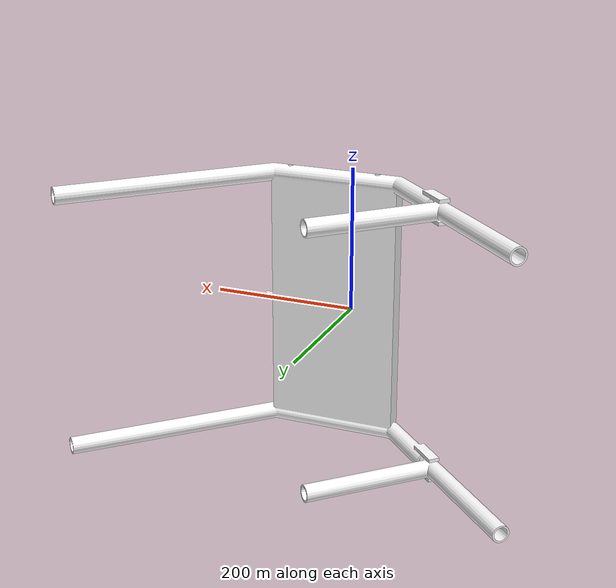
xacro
<?xml version="1.0"?>

<robot name="agribot"
    xmlns:sensor="http://playerstage.sourceforge.net/gazebo/xmlschema/#sensor"
    xmlns:controller="http://playerstage.sourceforge.net/gazebo/xmlschema/#controller"
    xmlns:interface="http://playerstage.sourceforge.net/gazebo/xmlschema/#interface"
    xmlns:xacro="http://ros.org/wiki/xacro">

    <!-- Included URDF Files -->
	<xacro:include filename="$(find agribot_description)/urdf/agribot_body.urdf.xacro" />

        <property name="ns" value="agribot" />

	<gazebo>
	  <plugin name="gazebo_ros_control" filename="libgazebo_ros_control.so">
    	  	<robotNamespace>/agribot</robotNamespace>
  	  </plugin>
	</gazebo>

	<gazebo>
  <plugin name="skid_steer_drive_controller" filename="libgazebo_ros_skid_steer_drive.so">
    <updateRate>100.0</updateRate>
    <robotNamespace>/agribot</robotNamespace>
    <commandTopic>/agribot/cmd_vel</commandTopic>
    <odometryTopic>odom</odometryTopic>
    <odometryFrame>odom</odometryFrame>
    <leftFrontJoint>base_link_to_left_wheel_F_joint</leftFrontJoint>
    <rightFrontJoint>base_link_to_right_wheel_F_joint</rightFrontJoint>
    <leftRearJoint>base_link_to_left_wheel_R_joint</leftRearJoint>
    <rightRearJoint>base_link_to_right_wheel_R_joint</rightRearJoint>
    <wheelSeparation>0.65</wheelSeparation>
    <wheelDiameter>0.2</wheelDiameter>
    <robotBaseFrame>dummy_link</robotBaseFrame>
    <torque>20</torque>
    <topicName>/agribot/cmd_vel</topicName>
    <broadcastTF>True</broadcastTF>
    <covariance_x>0.000100</covariance_x>
    <covariance_y>0.000100</covariance_y>
    <covariance_z>0.000100</covariance_z>
    <covariance_yaw>0.0100</covariance_yaw>
  </plugin>
</gazebo>>

    <!-- Set up imu configuration -->
    <gazebo>
        <plugin name="imu" filename="libhector_gazebo_ros_imu.so">
	  <serviceName>/imu/calibrate</serviceName>
	<robotNamespace>/agribot</robotNamespace>
	  <updateRate>200.0</updateRate>
	  <bodyName>imu_link</bodyName>
	  <frameId>imu_link</frameId>
	  <topicName>imu</topicName>
	  <rpyOffset>0 0 0</rpyOffset>
	  <xyzOffset>0 0 0</xyzOffset>
	  <gaussianNoise>0.00000001</gaussianNoise>
	  <accelOffset>0 0 -9.79999999586</accelOffset>
	  <accelDrift>0.00000001 0.00000001 0.00000001</accelDrift>
	  <accelDriftFrequency>0.00000001 0.00000001 0.00000001</accelDriftFrequency>
	  <accelGaussianNoise>0.00000001 0.00000001 0.00000001</accelGaussianNoise>
	  <rateDrift>0.0 0.0 0.0</rateDrift>
	  <rateDriftFrequency>0.0 0.0 0.0</rateDriftFrequency>
	  <rateGaussianNoise>0.0 0.0 0.0</rateGaussianNoise>
	  <headingDrift>0.0 0.0 0.0</headingDrift>
	  <headingDriftFrequency>0.0 0.0 0.0</headingDriftFrequency>
	  <headingGaussianNoise>0.0 0.0 0.0</headingGaussianNoise>
	</plugin>
     </gazebo>

    <!-- Set up gps configuration -->
    <gazebo>
	<plugin name="gps_controller" filename="libhector_gazebo_ros_gps.so">
	    <alwayson>true</alwayson>
	    <robotNamespace>/agribot</robotNamespace>
	    <updateRate>5.0</updateRate>
	    <bodyname>gps_link</bodyname>
	    <topicname>fix</topicname>
	    <velocitytopicname>fix_velocity</velocitytopicname>
	    <drift>5.0 5.0 5.0</drift>
	    <offset>0 0 0</offset>
	    <status> 0 </status>
	    <service> 1 </service>
            <referenceLatitude> 21.1613108102 </referenceLatitude>
	    <referenceLongitude> 72.7869817026 </referenceLongitude>
	    <gaussiannoise>0.1 0.1 0.1</gaussiannoise>
	    <velocitydrift>0 0 0</velocitydrift>
	    <velocitygaussiannoise>0.1 0.1 0.1</velocitygaussiannoise>
	</plugin>
     </gazebo>

	<gazebo>
		<plugin name="magnetometer" filename="libhector_gazebo_ros_magnetic.so">
			<updateRate>5.0</updateRate>
			<robotNamespace>/agribot</robotNamespace>
			<bodyName>base_link</bodyName>
			<topicName>/magnetic</topicName>
			<magnitude>1.0</magnitude>
			<referenceHeading>0.0</referenceHeading>
			<declination>0.0</declination>
			<offset>0 0 0</offset>
			<drift>0.1 0.1 0.1</drift>
			<driftFrequency>10 10 10</driftFrequency>
			<gaussianNoise>0.1 0.1 0.1</gaussianNoise>
		</plugin>
	</gazebo>
</robot>

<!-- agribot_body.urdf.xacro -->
<robot
    name="agribot"
    xmlns:xi="http://www.w3.org/2001/XInclude"
    xmlns:gazebo="http://playerstage.sourceforge.net/gazebo/xmlschema/#gz"
    xmlns:model="http://playerstage.sourceforge.net/gazebo/xmlschema/#model"
    xmlns:sensor="http://playerstage.sourceforge.net/gazebo/xmlschema/#sensor"
    xmlns:body="http://playerstage.sourceforge.net/gazebo/xmlschema/#body"
    xmlns:geom="http://playerstage.sourceforge.net/gazebo/xmlschema/#geom"
    xmlns:joint="http://playerstage.sourceforge.net/gazebo/xmlschema/#joint"
    xmlns:controller="http://playerstage.sourceforge.net/gazebo/xmlschema/#controller"
    xmlns:interface="http://playerstage.sourceforge.net/gazebo/xmlschema/#interface"
    xmlns:rendering="http://playerstage.sourceforge.net/gazebo/xmlschema/#rendering"
    xmlns:renderable="http://playerstage.sourceforge.net/gazebo/xmlschema/#renderable"
    xmlns:physics="http://playerstage.sourceforge.net/gazebo/xmlschema/#physics"
    xmlns:xacro="http://ros.org/wiki/xacro">

    <!-- Included URDF/XACRO Files -->
    <xacro:include filename="$(find agribot_description)/urdf/agribot_materials.urdf.xacro"/>
    <xacro:include filename="$(find agribot_description)/urdf/agribot_parts.urdf.xacro"/>

    <!-- PROPERTY LIST -->
    <!--All units in m-kg-s-radians unit system -->
    <property name="M_PI" value="3.1415926535897931" />

 	<property name="ns" value="agribot" />
    <!-- DUMMY-LINK-->
    <link name="dummy_link">
    </link>

    <joint name="dummy_link_to_base_link" type="fixed">
    	<origin xyz="0 0 0.26" rpy="0 0 0" />
        <parent link="dummy_link"/>
        <child link="base_link"/>
    </joint>

    <gazebo reference="dummy_link">
	<material>Gazebo/WoodBrown</material>
	<turnGravityOff>false</turnGravityOff>
    </gazebo>

    <!-- BASE-LINK -->
    <!--Actual body/chassis of the robot-->
    <link name="base_link">
        <inertial>
            <mass value="3.4672" />
            <origin xyz="0 0 0"
		    rpy="0 0 0"	 />
            <inertia
		ixx="0.045731"    ixy="-1.5439E-12"        ixz="-8.4448E-09"
		iyy="0.077236"        iyz="1.5494E-12"        izz="0.049938" />
        </inertial>

        <visual>
            <origin xyz="0 0 0" rpy="1.57 0 0"/>
            <geometry>
		<mesh filename="package://agribot_description/meshes/base_link.STL"/>
            </geometry>
            <material name="White"/>
        </visual>

        <collision>
          <origin xyz="0 0 0" rpy="1.57 0 0" />
          <geometry>
		<mesh filename="package://agribot_description/meshes/base_link.STL"/>
            </geometry>
        </collision>
    </link>
    <gazebo reference="base_link">
        <material>Gazebo/White</material>
        <turnGravityOff>false</turnGravityOff>
    </gazebo>

	<!--Wheels-->
   <!-- left_wheel_Back -->
    <agribot_part parent="base_link" name="left_wheel_R"
          translateX="-0.2519" translateY="-0.3908" translateZ="-0.1908"
          rotateX="0.0" rotateY="0.0" rotateZ="1.57"
          color="White" />
    <gazebo reference="left_wheel_R">
        <material>Gazebo/DarkGray</material>
	<mu1>1.0</mu1>
        <mu2>1.0</mu2>
	<kp  value="10000000.0" />
   	<kd  value="1.0" />
  	<fdir1 value="1 0 0"/>
    </gazebo>

    <!-- right_wheel_back -->
    <agribot_part parent="base_link" name="right_wheel_R"
          translateX="-0.2519" translateY="0.3908" translateZ="-0.1908"
          rotateX="0.0" rotateY="0.0" rotateZ="1.57"
          color="White" />
    <gazebo reference="right_wheel_R">
        <material>Gazebo/DarkGray</material>
	<mu1>1.0</mu1>
        <mu2>1.0</mu2>
	<kp  value="10000000.0" />
  	<kd  value="1.0" />
  	<fdir1 value="1 0 0"/>
    </gazebo>

    <!-- left_wheel_front -->
    <agribot_part parent="base_link" name="left_wheel_F"
          translateX="0.2519" translateY="-0.3908" translateZ="-0.1908"
          rotateX="0.0" rotateY="0.0" rotateZ="1.57"
          color="White" />
    <gazebo reference="left_wheel_F">
        <material>Gazebo/DarkGray</material>
	<mu1>1.0</mu1>
  	<mu2>1.0</mu2>
	<kp  value="10000000.0" />
  	<kd  value="1.0" />
  	<fdir1 value="1 0 0"/>
    </gazebo>

    <!-- Right_wheel_front -->
    <agribot_part parent="base_link" name="right_wheel_F"
	  translateX="0.2519" translateY="0.3908" translateZ="-0.1908"
          rotateX="0.0" rotateY="0.0" rotateZ="1.57"
          color="White" />
    <gazebo reference="right_wheel_F">
        <material>Gazebo/DarkGray</material>
	<mu1>1.0</mu1>
  	<mu2>1.0</mu2>
	<kp  value="10000000.0" />
 	<kd  value="1.0" />
 	<fdir1 value="1 0 0"/>
    </gazebo>

 <link name="imu_link">
    <collision>
      <origin xyz="0 0 0" rpy="0 0 0"/>
      <geometry>
        <box size="0.05 0.05 0.05"/>
      </geometry>
    </collision>
    <visual>
      <origin xyz="0 0 0" rpy="0 0 0"/>
      <geometry>
        <box size="0.05 0.05 0.05"/>
      </geometry>
      <material name="Yellow"/>
    </visual>
  </link>
	<joint name="imu_to_base_link" type="fixed">
    		<origin xyz="0 0.06 0" rpy="0 0 0" />
        	<parent link="base_link"/>
        	<child link="imu_link"/>
    	</joint>
<gazebo reference="imu_link">
  <material>Gazebo/Yellow</material>
</gazebo>

  <link name="gps_link">
    <collision>
      <origin xyz="0 0 0" rpy="0 0 0"/>
      <geometry>
        <box size="0.05 0.05 0.05"/>
      </geometry>
    </collision>
    <visual>
      <origin xyz="0 0 0" rpy="0 0 0"/>
      <geometry>
        <box size="0.05 0.05 0.05"/>
      </geometry>
      <material name="Black"/>
    </visual>
  </link>

<joint name="gps_to_base_link" type="fixed">
    <origin xyz="0 -0.06 0" rpy="0 0 0" />
        <parent link="base_link"/>
        <child link="gps_link"/>
    </joint>
<gazebo reference="gps_link">
  <material>Gazebo/Black</material>
</gazebo>

<link name="magnetometer_link">
    <collision>
      <origin xyz="0 0 0" rpy="0 0 0"/>
      <geometry>
        <box size="0.05 0.05 0.05"/>
      </geometry>
    </collision>
    <visual>
      <origin xyz="0 0 0" rpy="0 0 0"/>
      <geometry>
        <box size="0.05 0.05 0.05"/>
      </geometry>
      <material name="Red"/>
    </visual>
  </link>

<joint name="magnetometer_to_base_link" type="fixed">
    <origin xyz="0.3 0 0" rpy="0 0 0" />
        <parent link="base_link"/>
        <child link="magnetometer_link"/>
    </joint>
<gazebo reference="magnetometer_link">
  <material>Gazebo/Red</material>
</gazebo>

 <!-- Set up camera linkage and configuration -->
    <joint name="base_link_camera_link_joint" type="fixed">
		<origin xyz="0 0 0" rpy="0 0 0" />
        <parent link="base_link"/>
        <child link="camera_link" />
    </joint>
    <link name="camera_link">
        <inertial>
            <mass value="0.001"/>
            <origin xyz="0 0 0"/>
            <inertia ixx="0.1" ixy="0.0" ixz="0.0" iyy="0.1" iyz="0.0" izz="0.1"/>
        </inertial>
	<collision>
     	 <origin xyz="0 0 0" rpy="0 1.57 0"/>
     	 <geometry>
       		 <cylinder radius="0.03" length="0.05"/>
         </geometry>
   	 </collision>
   	 <visual>
    	  <origin xyz="0 0 0" rpy="0 1.57 0"/>
    	  <geometry>
            <cylinder radius="0.03" length="0.05"/>
          </geometry>
     	 <material name="White"/>
    	</visual>
    </link>
    <gazebo reference="camera_link">
	  <material>Gazebo/White</material>
	<sensor type="camera" name="camera">
            <update_rate>30.0</update_rate>
            <camera name="agribot_camera">
                <horizontal_fov>1.3962634</horizontal_fov>
                <image>
                    <width>640</width>
                    <height>480</height>
                    <format>R8G8B8</format>
                </image>
                <clip>
                    <near>0.02</near>
                    <far>300</far>
                </clip>
                <noise>
                    <type>gaussian</type>
                    <mean>0.0</mean>
                    <stddev>0.007</stddev>
                </noise>
            </camera>
            <plugin name="camera_controller" filename="libgazebo_ros_camera.so">
                <alwaysOn>true</alwaysOn>
                <updateRate>30.0</updateRate>
                <cameraName>agribot/camera</cameraName>
                <imageTopicName>image_raw</imageTopicName>
                <cameraInfoTopicName>camera_info</cameraInfoTopicName>
                <frameName>camera_link</frameName>
                <hackBaseline>0.07</hackBaseline>
                <distortionK1>0.0</distortionK1>
                <distortionK2>0.0</distortionK2>
                <distortionK3>0.0</distortionK3>
                <distortionT1>0.0</distortionT1>
                <distortionT2>0.0</distortionT2>
		<robotNamespace>${ns}</robotNamespace>
            </plugin>
        </sensor>
    </gazebo>

</robot>

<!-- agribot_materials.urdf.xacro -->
<robot>
	<material name="Black">
		<color rgba="0.0 0.0 0.0 1.0"/>
	</material>

	<material name="Gray">
		<color rgba="0.7 0.7 0.7 1.0"/>
	</material>

	<material name="DarkGray">
		<color rgba="0.2 0.2 0.2 1.0"/>
	</material>

	<material name="White">
		<color rgba="1.0 1.0 1.0 1.0"/>
	</material>

	<material name="Yellow">
		<color rgba="0.8 0.8 0.0 1.0"/>
	</material>

	<material name="WoodBrown">
		<color rgba="0.7 0.6 0.4 1.0"/>
	</material>
	<material name="Red">
		<color rgba="1.0 0.0 0.0 1.0"/>
	</material>
</robot>

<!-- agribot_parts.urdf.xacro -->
<robot xmlns:xacro="http://ros.org/wiki/xacro" name="agribot_parts">

	<property name="x_com" value="1.6567E-05" /> <!-- com : center of mass -->
	<property name="y_com" value="-1.6653E-16" /> <!-- com : center of mass -->
	<property name="z_com" value="2.2204E-16" /> <!-- com : center of mass -->

	<property name="mass" value="0.411" /> <!-- in kg-->

	<property name="ixx_com_cs" value="0.0020959" /> <!-- at center of mass aligned with coordinate system, kg*m^2-->
	<property name="ixy_com_cs" value="-4.2986E-19" /> <!-- at center of mass aligned with coordinate system, kg*m^2-->
	<property name="ixz_com_cs" value="3.5506E-19" /> <!-- at center of mass aligned with coordinate system, kg*m^2-->
	<property name="iyy_com_cs" value="0.00113" /> <!-- at center of mass aligned with coordinate system, kg*m^2-->
	<property name="iyz_com_cs" value="-1.9664E-18" /> <!-- at center of mass aligned with coordinate system, kg*m^2-->
	<property name="izz_com_cs" value="0.00113" /> <!-- at center of mass aligned with coordinate system, kg*m^2-->

	<xacro:macro name="agribot_part" params="parent name translateX translateY translateZ rotateX rotateY rotateZ color">
		<joint name="${parent}_to_${name}_joint" type="continuous">
		    <origin xyz="${translateX} ${translateY} ${translateZ}"
		            rpy="${rotateX} ${rotateY} ${rotateZ}" />
		    <parent link="base_link" />
		    <child link="${name}" />
		    <axis xyz="-1 0 0" />
    		    <limit lower="0"
    			   upper="3.14"
      			   effort="0.1"
      			   velocity="0.1" />
		</joint>

		<link name="${name}">
			<inertial>
				<mass value="${mass}" />
				<origin xyz="${x_com} ${y_com} ${z_com}"
					rpy="0 0 0"	/>
				<inertia ixx="${ixx_com_cs}" ixy="${ixy_com_cs}" ixz="${ixz_com_cs}"
					iyy="${iyy_com_cs}" iyz="${iyz_com_cs}" izz="${izz_com_cs}" />
			</inertial>
			<visual>
				<origin xyz="0 0 0" rpy="0 0 0" />
				<geometry>
                			<mesh filename="package://agribot_description/meshes/wheel_1.STL"/>
            			</geometry>
        			<material name="${color}" />
			</visual>
			<collision>
				<origin xyz="0 0 0" rpy="0 0 0"/>
				<geometry>
					 <mesh filename="package://agribot_description/meshes/wheel_1.STL"/><!--needs to think about collision boundary-->
				</geometry>
			</collision>
		</link>
		<transmission name="${name}_trans">
  			<type>transmission_interface/SimpleTransmission</type>
  			<joint name="${parent}_to_${name}_joint">
				 <hardwareInterface>hardware_interface/EffortJointInterface</hardwareInterface>
			</joint>
  			<actuator name="${name}_Motor">
    				<mechanicalReduction>10</mechanicalReduction>
  			</actuator>
		</transmission>

  	</xacro:macro>
</robot>
